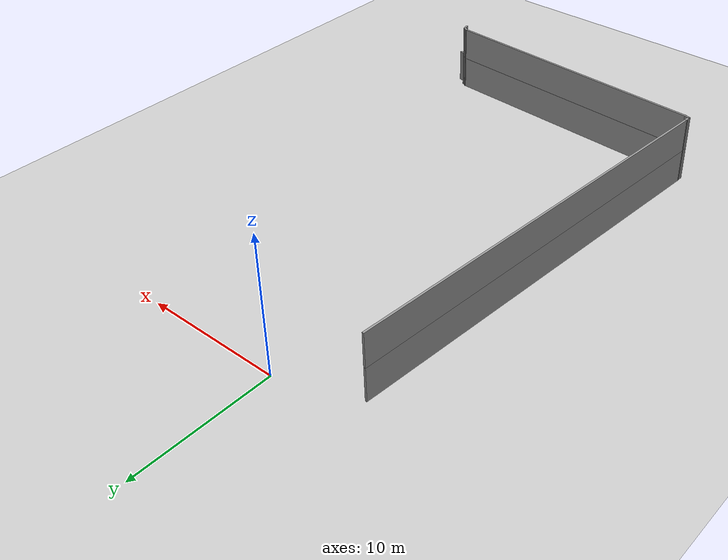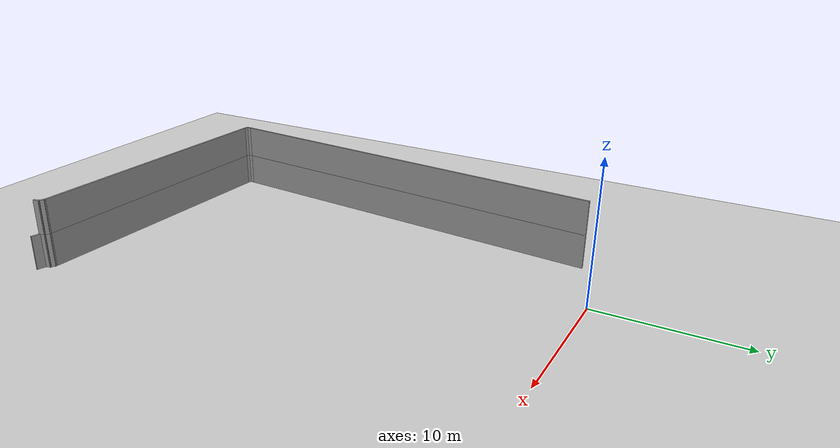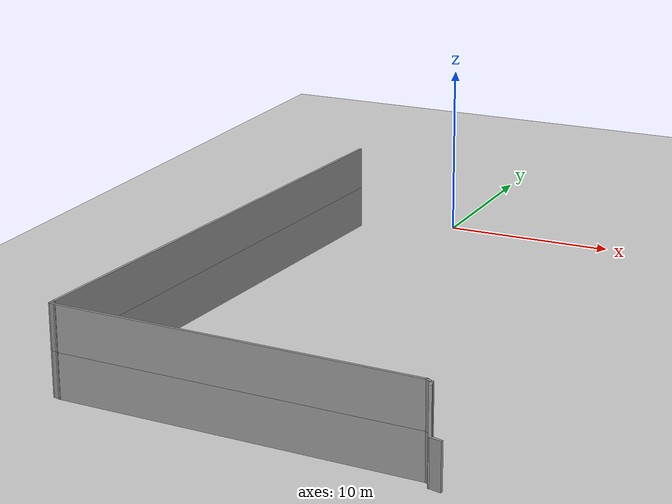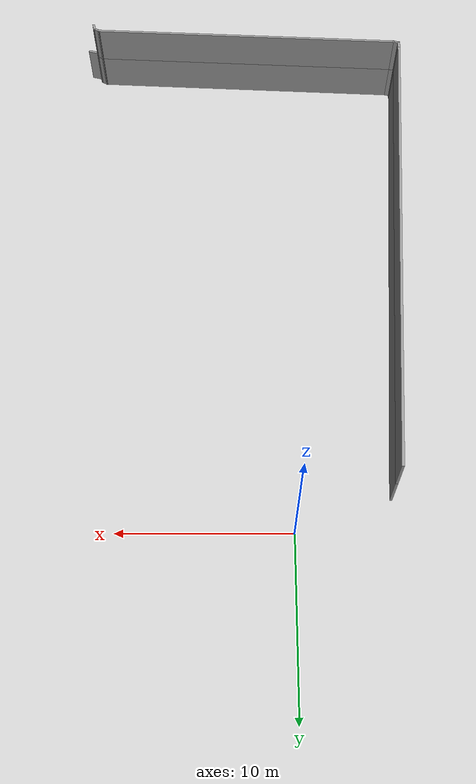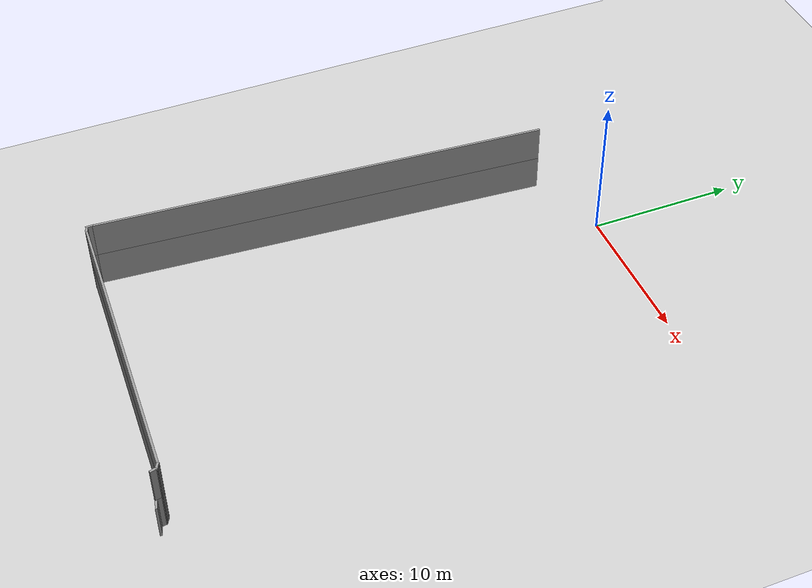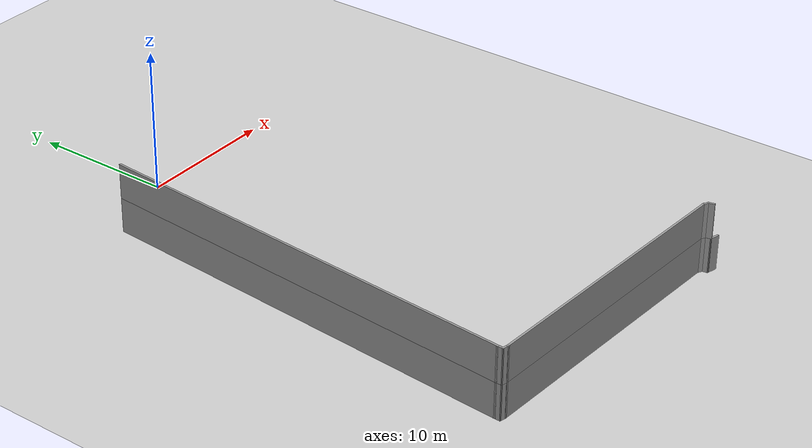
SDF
<sdf version="1.7">
 <world name="default">
  <model name="ground_plane">
   <static>1</static>
   <link name="link">
    <collision name="collision">
     <geometry><plane><normal>0 0 1</normal><size>100 100</size></plane></geometry>
     <surface>
      <contact><collide_bitmask>65535</collide_bitmask></contact>
      <friction><ode><mu>100</mu><mu2>50</mu2></ode></friction>
     </surface>
    </collision>
    <visual name="visual">
     <cast_shadows>0</cast_shadows>
     <geometry><plane><normal>0 0 1</normal><size>100 100</size></plane></geometry>
     <material>
      <script><uri>file://media/materials/scripts/gazebo.material</uri><name>Gazebo/Grey</name></script>
     </material>
    </visual>
   </link>
  </model>
  <model name="EnvDC01">
   <link name="Wall_189">
    <pose>-13.1058 -11.017 0 0 0 -1.64176</pose>
    <visual name="Wall_189_Visual">
     <pose>0 0 1.25 0 -0 0</pose>
     <geometry><box><size>30.6182 0.15 2.5</size></box></geometry>
     <material>
      <script><uri>file://media/materials/scripts/gazebo.material</uri><name>Gazebo/Grey</name></script>
      <ambient>1 1 1 1</ambient>
      <shader type="pixel"/>
     </material>
     <meta><layer>0</layer></meta>
    </visual>
    <collision name="Wall_189_Collision">
     <pose>0 0 1.25 0 -0 0</pose>
     <geometry><box><size>30.6182 0.15 2.5</size></box></geometry>
     <surface>
      <friction>
       <ode><mu>1</mu><mu2>1</mu2><fdir1>0 0 0</fdir1><slip1>0</slip1><slip2>0</slip2></ode>
       <torsional>
        <coefficient>1</coefficient>
        <patch_radius>0</patch_radius>
        <surface_radius>0</surface_radius>
        <use_patch_radius>1</use_patch_radius>
        <ode><slip>0</slip></ode>
       </torsional>
      </friction>
      <bounce><restitution_coefficient>0</restitution_coefficient><threshold>1e+06</threshold></bounce>
      <contact>
       <collide_without_contact>0</collide_without_contact>
       <collide_without_contact_bitmask>1</collide_without_contact_bitmask>
       <collide_bitmask>1</collide_bitmask>
       <ode>
        <soft_cfm>0</soft_cfm>
        <soft_erp>0.2</soft_erp>
        <kp>1e+13</kp>
        <kd>1</kd>
        <max_vel>0.01</max_vel>
        <min_depth>0</min_depth>
       </ode>
       <bullet>
        <split_impulse>1</split_impulse>
        <split_impulse_penetration_threshold>-0.01</split_impulse_penetration_threshold>
        <soft_cfm>0</soft_cfm>
        <soft_erp>0.2</soft_erp>
        <kp>1e+13</kp>
        <kd>1</kd>
       </bullet>
      </contact>
     </surface>
    </collision>
   </link>
   <link name="Wall_191">
    <pose>-14.1859 -26.3878 0 0 0 -1.5708</pose>
    <visual name="Wall_191_Visual">
     <pose>0 0 1.25 0 -0 0</pose>
     <geometry><box><size>0.5 0.15 2.5</size></box></geometry>
     <material>
      <script><uri>file://media/materials/scripts/gazebo.material</uri><name>Gazebo/Grey</name></script>
      <ambient>1 1 1 1</ambient>
      <shader type="pixel"/>
     </material>
     <meta><layer>0</layer></meta>
    </visual>
    <collision name="Wall_191_Collision">
     <pose>0 0 1.25 0 -0 0</pose>
     <geometry><box><size>0.5 0.15 2.5</size></box></geometry>
     <surface>
      <friction>
       <ode><mu>1</mu><mu2>1</mu2><fdir1>0 0 0</fdir1><slip1>0</slip1><slip2>0</slip2></ode>
       <torsional>
        <coefficient>1</coefficient>
        <patch_radius>0</patch_radius>
        <surface_radius>0</surface_radius>
        <use_patch_radius>1</use_patch_radius>
        <ode><slip>0</slip></ode>
       </torsional>
      </friction>
      <bounce><restitution_coefficient>0</restitution_coefficient><threshold>1e+06</threshold></bounce>
      <contact>
       <collide_without_contact>0</collide_without_contact>
       <collide_without_contact_bitmask>1</collide_without_contact_bitmask>
       <collide_bitmask>1</collide_bitmask>
       <ode>
        <soft_cfm>0</soft_cfm>
        <soft_erp>0.2</soft_erp>
        <kp>1e+13</kp>
        <kd>1</kd>
        <max_vel>0.01</max_vel>
        <min_depth>0</min_depth>
       </ode>
       <bullet>
        <split_impulse>1</split_impulse>
        <split_impulse_penetration_threshold>-0.01</split_impulse_penetration_threshold>
        <soft_cfm>0</soft_cfm>
        <soft_erp>0.2</soft_erp>
        <kp>1e+13</kp>
        <kd>1</kd>
       </bullet>
      </contact>
     </surface>
    </collision>
   </link>
   <link name="Wall_193">
    <pose>-14.0168 -26.6081 0 0 0 -0.261799</pose>
    <visual name="Wall_193_Visual">
     <pose>0 0 1.25 0 -0 0</pose>
     <geometry><box><size>0.5 0.15 2.5</size></box></geometry>
     <material>
      <script><uri>file://media/materials/scripts/gazebo.material</uri><name>Gazebo/Grey</name></script>
      <ambient>1 1 1 1</ambient>
      <shader type="pixel"/>
     </material>
     <meta><layer>0</layer></meta>
    </visual>
    <collision name="Wall_193_Collision">
     <pose>0 0 1.25 0 -0 0</pose>
     <geometry><box><size>0.5 0.15 2.5</size></box></geometry>
     <surface>
      <friction>
       <ode><mu>1</mu><mu2>1</mu2><fdir1>0 0 0</fdir1><slip1>0</slip1><slip2>0</slip2></ode>
       <torsional>
        <coefficient>1</coefficient>
        <patch_radius>0</patch_radius>
        <surface_radius>0</surface_radius>
        <use_patch_radius>1</use_patch_radius>
        <ode><slip>0</slip></ode>
       </torsional>
      </friction>
      <bounce><restitution_coefficient>0</restitution_coefficient><threshold>1e+06</threshold></bounce>
      <contact>
       <collide_without_contact>0</collide_without_contact>
       <collide_without_contact_bitmask>1</collide_without_contact_bitmask>
       <collide_bitmask>1</collide_bitmask>
       <ode>
        <soft_cfm>0</soft_cfm>
        <soft_erp>0.2</soft_erp>
        <kp>1e+13</kp>
        <kd>1</kd>
        <max_vel>0.01</max_vel>
        <min_depth>0</min_depth>
       </ode>
       <bullet>
        <split_impulse>1</split_impulse>
        <split_impulse_penetration_threshold>-0.01</split_impulse_penetration_threshold>
        <soft_cfm>0</soft_cfm>
        <soft_erp>0.2</soft_erp>
        <kp>1e+13</kp>
        <kd>1</kd>
       </bullet>
      </contact>
     </surface>
    </collision>
   </link>
   <link name="Wall_194">
    <pose>-3.82435 -27.1433 0 0 0 -0.048839</pose>
    <visual name="Wall_194_Visual">
     <pose>0 0 1.25 0 -0 0</pose>
     <geometry><box><size>20.2208 0.15 2.5</size></box></geometry>
     <material>
      <script><uri>file://media/materials/scripts/gazebo.material</uri><name>Gazebo/Grey</name></script>
      <ambient>1 1 1 1</ambient>
      <shader type="pixel"/>
     </material>
     <meta><layer>0</layer></meta>
    </visual>
    <collision name="Wall_194_Collision">
     <pose>0 0 1.25 0 -0 0</pose>
     <geometry><box><size>20.2208 0.15 2.5</size></box></geometry>
     <surface>
      <friction>
       <ode><mu>1</mu><mu2>1</mu2><fdir1>0 0 0</fdir1><slip1>0</slip1><slip2>0</slip2></ode>
       <torsional>
        <coefficient>1</coefficient>
        <patch_radius>0</patch_radius>
        <surface_radius>0</surface_radius>
        <use_patch_radius>1</use_patch_radius>
        <ode><slip>0</slip></ode>
       </torsional>
      </friction>
      <bounce><restitution_coefficient>0</restitution_coefficient><threshold>1e+06</threshold></bounce>
      <contact>
       <collide_without_contact>0</collide_without_contact>
       <collide_without_contact_bitmask>1</collide_without_contact_bitmask>
       <collide_bitmask>1</collide_bitmask>
       <ode>
        <soft_cfm>0</soft_cfm>
        <soft_erp>0.2</soft_erp>
        <kp>1e+13</kp>
        <kd>1</kd>
        <max_vel>0.01</max_vel>
        <min_depth>0</min_depth>
       </ode>
       <bullet>
        <split_impulse>1</split_impulse>
        <split_impulse_penetration_threshold>-0.01</split_impulse_penetration_threshold>
        <soft_cfm>0</soft_cfm>
        <soft_erp>0.2</soft_erp>
        <kp>1e+13</kp>
        <kd>1</kd>
       </bullet>
      </contact>
     </surface>
    </collision>
   </link>
   <link name="Wall_195">
    <pose>6.35065 -27.7207 0 0 0 -0.523599</pose>
    <visual name="Wall_195_Visual">
     <pose>0 0 1.25 0 -0 0</pose>
     <geometry><box><size>0.5 0.15 2.5</size></box></geometry>
     <material>
      <script><uri>file://media/materials/scripts/gazebo.material</uri><name>Gazebo/Grey</name></script>
      <ambient>1 1 1 1</ambient>
      <shader type="pixel"/>
     </material>
     <meta><layer>0</layer></meta>
    </visual>
    <collision name="Wall_195_Collision">
     <pose>0 0 1.25 0 -0 0</pose>
     <geometry><box><size>0.5 0.15 2.5</size></box></geometry>
     <surface>
      <friction>
       <ode><mu>1</mu><mu2>1</mu2><fdir1>0 0 0</fdir1><slip1>0</slip1><slip2>0</slip2></ode>
       <torsional>
        <coefficient>1</coefficient>
        <patch_radius>0</patch_radius>
        <surface_radius>0</surface_radius>
        <use_patch_radius>1</use_patch_radius>
        <ode><slip>0</slip></ode>
       </torsional>
      </friction>
      <bounce><restitution_coefficient>0</restitution_coefficient><threshold>1e+06</threshold></bounce>
      <contact>
       <collide_without_contact>0</collide_without_contact>
       <collide_without_contact_bitmask>1</collide_without_contact_bitmask>
       <collide_bitmask>1</collide_bitmask>
       <ode>
        <soft_cfm>0</soft_cfm>
        <soft_erp>0.2</soft_erp>
        <kp>1e+13</kp>
        <kd>1</kd>
        <max_vel>0.01</max_vel>
        <min_depth>0</min_depth>
       </ode>
       <bullet>
        <split_impulse>1</split_impulse>
        <split_impulse_penetration_threshold>-0.01</split_impulse_penetration_threshold>
        <soft_cfm>0</soft_cfm>
        <soft_erp>0.2</soft_erp>
        <kp>1e+13</kp>
        <kd>1</kd>
       </bullet>
      </contact>
     </surface>
    </collision>
   </link>
   <link name="Wall_197">
    <pose>6.54749 -27.9773 0 0 0 -1.309</pose>
    <visual name="Wall_197_Visual">
     <pose>0 0 1.25 0 -0 0</pose>
     <geometry><box><size>0.5 0.15 2.5</size></box></geometry>
     <material>
      <script><uri>file://media/materials/scripts/gazebo.material</uri><name>Gazebo/Grey</name></script>
      <ambient>1 1 1 1</ambient>
      <shader type="pixel"/>
     </material>
     <meta><layer>0</layer></meta>
    </visual>
    <collision name="Wall_197_Collision">
     <pose>0 0 1.25 0 -0 0</pose>
     <geometry><box><size>0.5 0.15 2.5</size></box></geometry>
     <surface>
      <friction>
       <ode><mu>1</mu><mu2>1</mu2><fdir1>0 0 0</fdir1><slip1>0</slip1><slip2>0</slip2></ode>
       <torsional>
        <coefficient>1</coefficient>
        <patch_radius>0</patch_radius>
        <surface_radius>0</surface_radius>
        <use_patch_radius>1</use_patch_radius>
        <ode><slip>0</slip></ode>
       </torsional>
      </friction>
      <bounce><restitution_coefficient>0</restitution_coefficient><threshold>1e+06</threshold></bounce>
      <contact>
       <collide_without_contact>0</collide_without_contact>
       <collide_without_contact_bitmask>1</collide_without_contact_bitmask>
       <collide_bitmask>1</collide_bitmask>
       <ode>
        <soft_cfm>0</soft_cfm>
        <soft_erp>0.2</soft_erp>
        <kp>1e+13</kp>
        <kd>1</kd>
        <max_vel>0.01</max_vel>
        <min_depth>0</min_depth>
       </ode>
       <bullet>
        <split_impulse>1</split_impulse>
        <split_impulse_penetration_threshold>-0.01</split_impulse_penetration_threshold>
        <soft_cfm>0</soft_cfm>
        <soft_erp>0.2</soft_erp>
        <kp>1e+13</kp>
        <kd>1</kd>
       </bullet>
      </contact>
     </surface>
    </collision>
   </link>
   <link name="Wall_198">
    <pose>6.88256 -28.224 0 0 0 -0.261799</pose>
    <visual name="Wall_198_Visual">
     <pose>0 0 1.25 0 -0 0</pose>
     <geometry><box><size>0.75 0.15 2.5</size></box></geometry>
     <material>
      <script><uri>file://media/materials/scripts/gazebo.material</uri><name>Gazebo/Grey</name></script>
      <ambient>1 1 1 1</ambient>
      <shader type="pixel"/>
     </material>
     <meta><layer>0</layer></meta>
    </visual>
    <collision name="Wall_198_Collision">
     <pose>0 0 1.25 0 -0 0</pose>
     <geometry><box><size>0.75 0.15 2.5</size></box></geometry>
     <surface>
      <friction>
       <ode><mu>1</mu><mu2>1</mu2><fdir1>0 0 0</fdir1><slip1>0</slip1><slip2>0</slip2></ode>
       <torsional>
        <coefficient>1</coefficient>
        <patch_radius>0</patch_radius>
        <surface_radius>0</surface_radius>
        <use_patch_radius>1</use_patch_radius>
        <ode><slip>0</slip></ode>
       </torsional>
      </friction>
      <bounce><restitution_coefficient>0</restitution_coefficient><threshold>1e+06</threshold></bounce>
      <contact>
       <collide_without_contact>0</collide_without_contact>
       <collide_without_contact_bitmask>1</collide_without_contact_bitmask>
       <collide_bitmask>1</collide_bitmask>
       <ode>
        <soft_cfm>0</soft_cfm>
        <soft_erp>0.2</soft_erp>
        <kp>1e+13</kp>
        <kd>1</kd>
        <max_vel>0.01</max_vel>
        <min_depth>0</min_depth>
       </ode>
       <bullet>
        <split_impulse>1</split_impulse>
        <split_impulse_penetration_threshold>-0.01</split_impulse_penetration_threshold>
        <soft_cfm>0</soft_cfm>
        <soft_erp>0.2</soft_erp>
        <kp>1e+13</kp>
        <kd>1</kd>
       </bullet>
      </contact>
     </surface>
    </collision>
   </link>
   <link name="Wall_366">
    <pose>-13.1058 -11.017 2.5 0 0 -1.64176</pose>
    <visual name="Wall_366_Visual">
     <pose>0 0 1.25 0 -0 0</pose>
     <geometry><box><size>30.6182 0.15 2.5</size></box></geometry>
     <material>
      <script><uri>file://media/materials/scripts/gazebo.material</uri><name>Gazebo/Grey</name></script>
      <ambient>1 1 1 1</ambient>
      <shader type="pixel"/>
     </material>
     <meta><layer>1</layer></meta>
    </visual>
    <collision name="Wall_366_Collision">
     <pose>0 0 1.25 0 -0 0</pose>
     <geometry><box><size>30.6182 0.15 2.5</size></box></geometry>
     <surface>
      <friction>
       <ode><mu>1</mu><mu2>1</mu2><fdir1>0 0 0</fdir1><slip1>0</slip1><slip2>0</slip2></ode>
       <torsional>
        <coefficient>1</coefficient>
        <patch_radius>0</patch_radius>
        <surface_radius>0</surface_radius>
        <use_patch_radius>1</use_patch_radius>
        <ode><slip>0</slip></ode>
       </torsional>
      </friction>
      <bounce><restitution_coefficient>0</restitution_coefficient><threshold>1e+06</threshold></bounce>
      <contact>
       <collide_without_contact>0</collide_without_contact>
       <collide_without_contact_bitmask>1</collide_without_contact_bitmask>
       <collide_bitmask>1</collide_bitmask>
       <ode>
        <soft_cfm>0</soft_cfm>
        <soft_erp>0.2</soft_erp>
        <kp>1e+13</kp>
        <kd>1</kd>
        <max_vel>0.01</max_vel>
        <min_depth>0</min_depth>
       </ode>
       <bullet>
        <split_impulse>1</split_impulse>
        <split_impulse_penetration_threshold>-0.01</split_impulse_penetration_threshold>
        <soft_cfm>0</soft_cfm>
        <soft_erp>0.2</soft_erp>
        <kp>1e+13</kp>
        <kd>1</kd>
       </bullet>
      </contact>
     </surface>
    </collision>
   </link>
   <link name="Wall_367">
    <pose>-14.1859 -26.3878 2.5 0 0 -1.5708</pose>
    <visual name="Wall_367_Visual">
     <pose>0 0 1.25 0 -0 0</pose>
     <geometry><box><size>0.5 0.15 2.5</size></box></geometry>
     <material>
      <script><uri>file://media/materials/scripts/gazebo.material</uri><name>Gazebo/Grey</name></script>
      <ambient>1 1 1 1</ambient>
      <shader type="pixel"/>
     </material>
     <meta><layer>1</layer></meta>
    </visual>
    <collision name="Wall_367_Collision">
     <pose>0 0 1.25 0 -0 0</pose>
     <geometry><box><size>0.5 0.15 2.5</size></box></geometry>
     <surface>
      <friction>
       <ode><mu>1</mu><mu2>1</mu2><fdir1>0 0 0</fdir1><slip1>0</slip1><slip2>0</slip2></ode>
       <torsional>
        <coefficient>1</coefficient>
        <patch_radius>0</patch_radius>
        <surface_radius>0</surface_radius>
        <use_patch_radius>1</use_patch_radius>
        <ode><slip>0</slip></ode>
       </torsional>
      </friction>
      <bounce><restitution_coefficient>0</restitution_coefficient><threshold>1e+06</threshold></bounce>
      <contact>
       <collide_without_contact>0</collide_without_contact>
       <collide_without_contact_bitmask>1</collide_without_contact_bitmask>
       <collide_bitmask>1</collide_bitmask>
       <ode>
        <soft_cfm>0</soft_cfm>
        <soft_erp>0.2</soft_erp>
        <kp>1e+13</kp>
        <kd>1</kd>
        <max_vel>0.01</max_vel>
        <min_depth>0</min_depth>
       </ode>
       <bullet>
        <split_impulse>1</split_impulse>
        <split_impulse_penetration_threshold>-0.01</split_impulse_penetration_threshold>
        <soft_cfm>0</soft_cfm>
        <soft_erp>0.2</soft_erp>
        <kp>1e+13</kp>
        <kd>1</kd>
       </bullet>
      </contact>
     </surface>
    </collision>
   </link>
   <link name="Wall_368">
    <pose>-14.0168 -26.6081 2.5 0 0 -0.261799</pose>
    <visual name="Wall_368_Visual">
     <pose>0 0 1.25 0 -0 0</pose>
     <geometry><box><size>0.5 0.15 2.5</size></box></geometry>
     <material>
      <script><uri>file://media/materials/scripts/gazebo.material</uri><name>Gazebo/Grey</name></script>
      <ambient>1 1 1 1</ambient>
      <shader type="pixel"/>
     </material>
     <meta><layer>1</layer></meta>
    </visual>
    <collision name="Wall_368_Collision">
     <pose>0 0 1.25 0 -0 0</pose>
     <geometry><box><size>0.5 0.15 2.5</size></box></geometry>
     <surface>
      <friction>
       <ode><mu>1</mu><mu2>1</mu2><fdir1>0 0 0</fdir1><slip1>0</slip1><slip2>0</slip2></ode>
       <torsional>
        <coefficient>1</coefficient>
        <patch_radius>0</patch_radius>
        <surface_radius>0</surface_radius>
        <use_patch_radius>1</use_patch_radius>
        <ode><slip>0</slip></ode>
       </torsional>
      </friction>
      <bounce><restitution_coefficient>0</restitution_coefficient><threshold>1e+06</threshold></bounce>
      <contact>
       <collide_without_contact>0</collide_without_contact>
       <collide_without_contact_bitmask>1</collide_without_contact_bitmask>
       <collide_bitmask>1</collide_bitmask>
       <ode>
        <soft_cfm>0</soft_cfm>
        <soft_erp>0.2</soft_erp>
        <kp>1e+13</kp>
        <kd>1</kd>
        <max_vel>0.01</max_vel>
        <min_depth>0</min_depth>
       </ode>
       <bullet>
        <split_impulse>1</split_impulse>
        <split_impulse_penetration_threshold>-0.01</split_impulse_penetration_threshold>
        <soft_cfm>0</soft_cfm>
        <soft_erp>0.2</soft_erp>
        <kp>1e+13</kp>
        <kd>1</kd>
       </bullet>
      </contact>
     </surface>
    </collision>
   </link>
   <link name="Wall_369">
    <pose>-3.82435 -27.1433 2.5 0 0 -0.048839</pose>
    <visual name="Wall_369_Visual">
     <pose>0 0 1.25 0 -0 0</pose>
     <geometry><box><size>20.2208 0.15 2.5</size></box></geometry>
     <material>
      <script><uri>file://media/materials/scripts/gazebo.material</uri><name>Gazebo/Grey</name></script>
      <ambient>1 1 1 1</ambient>
      <shader type="pixel"/>
     </material>
     <meta><layer>1</layer></meta>
    </visual>
    <collision name="Wall_369_Collision">
     <pose>0 0 1.25 0 -0 0</pose>
     <geometry><box><size>20.2208 0.15 2.5</size></box></geometry>
     <surface>
      <friction>
       <ode><mu>1</mu><mu2>1</mu2><fdir1>0 0 0</fdir1><slip1>0</slip1><slip2>0</slip2></ode>
       <torsional>
        <coefficient>1</coefficient>
        <patch_radius>0</patch_radius>
        <surface_radius>0</surface_radius>
        <use_patch_radius>1</use_patch_radius>
        <ode><slip>0</slip></ode>
       </torsional>
      </friction>
      <bounce><restitution_coefficient>0</restitution_coefficient><threshold>1e+06</threshold></bounce>
      <contact>
       <collide_without_contact>0</collide_without_contact>
       <collide_without_contact_bitmask>1</collide_without_contact_bitmask>
       <collide_bitmask>1</collide_bitmask>
       <ode>
        <soft_cfm>0</soft_cfm>
        <soft_erp>0.2</soft_erp>
        <kp>1e+13</kp>
        <kd>1</kd>
        <max_vel>0.01</max_vel>
        <min_depth>0</min_depth>
       </ode>
       <bullet>
        <split_impulse>1</split_impulse>
        <split_impulse_penetration_threshold>-0.01</split_impulse_penetration_threshold>
        <soft_cfm>0</soft_cfm>
        <soft_erp>0.2</soft_erp>
        <kp>1e+13</kp>
        <kd>1</kd>
       </bullet>
      </contact>
     </surface>
    </collision>
   </link>
   <link name="Wall_370">
    <pose>6.35065 -27.7207 2.5 0 0 -0.523599</pose>
    <visual name="Wall_370_Visual">
     <pose>0 0 1.25 0 -0 0</pose>
     <geometry><box><size>0.5 0.15 2.5</size></box></geometry>
     <material>
      <script><uri>file://media/materials/scripts/gazebo.material</uri><name>Gazebo/Grey</name></script>
      <ambient>1 1 1 1</ambient>
      <shader type="pixel"/>
     </material>
     <meta><layer>1</layer></meta>
    </visual>
    <collision name="Wall_370_Collision">
     <pose>0 0 1.25 0 -0 0</pose>
     <geometry><box><size>0.5 0.15 2.5</size></box></geometry>
     <surface>
      <friction>
       <ode><mu>1</mu><mu2>1</mu2><fdir1>0 0 0</fdir1><slip1>0</slip1><slip2>0</slip2></ode>
       <torsional>
        <coefficient>1</coefficient>
        <patch_radius>0</patch_radius>
        <surface_radius>0</surface_radius>
        <use_patch_radius>1</use_patch_radius>
        <ode><slip>0</slip></ode>
       </torsional>
      </friction>
      <bounce><restitution_coefficient>0</restitution_coefficient><threshold>1e+06</threshold></bounce>
      <contact>
       <collide_without_contact>0</collide_without_contact>
       <collide_without_contact_bitmask>1</collide_without_contact_bitmask>
       <collide_bitmask>1</collide_bitmask>
       <ode>
        <soft_cfm>0</soft_cfm>
        <soft_erp>0.2</soft_erp>
        <kp>1e+13</kp>
        <kd>1</kd>
        <max_vel>0.01</max_vel>
        <min_depth>0</min_depth>
       </ode>
       <bullet>
        <split_impulse>1</split_impulse>
        <split_impulse_penetration_threshold>-0.01</split_impulse_penetration_threshold>
        <soft_cfm>0</soft_cfm>
        <soft_erp>0.2</soft_erp>
        <kp>1e+13</kp>
        <kd>1</kd>
       </bullet>
      </contact>
     </surface>
    </collision>
   </link>
   <link name="Wall_371">
    <pose>6.54749 -27.9773 2.5 0 0 -1.309</pose>
    <visual name="Wall_371_Visual">
     <pose>0 0 1.25 0 -0 0</pose>
     <geometry><box><size>0.5 0.15 2.5</size></box></geometry>
     <material>
      <script><uri>file://media/materials/scripts/gazebo.material</uri><name>Gazebo/Grey</name></script>
      <ambient>1 1 1 1</ambient>
      <shader type="pixel"/>
     </material>
     <meta><layer>1</layer></meta>
    </visual>
    <collision name="Wall_371_Collision">
     <pose>0 0 1.25 0 -0 0</pose>
     <geometry><box><size>0.5 0.15 2.5</size></box></geometry>
     <surface>
      <friction>
       <ode><mu>1</mu><mu2>1</mu2><fdir1>0 0 0</fdir1><slip1>0</slip1><slip2>0</slip2></ode>
       <torsional>
        <coefficient>1</coefficient>
        <patch_radius>0</patch_radius>
        <surface_radius>0</surface_radius>
        <use_patch_radius>1</use_patch_radius>
        <ode><slip>0</slip></ode>
       </torsional>
      </friction>
      <bounce><restitution_coefficient>0</restitution_coefficient><threshold>1e+06</threshold></bounce>
      <contact>
       <collide_without_contact>0</collide_without_contact>
       <collide_without_contact_bitmask>1</collide_without_contact_bitmask>
       <collide_bitmask>1</collide_bitmask>
       <ode>
        <soft_cfm>0</soft_cfm>
        <soft_erp>0.2</soft_erp>
        <kp>1e+13</kp>
        <kd>1</kd>
        <max_vel>0.01</max_vel>
        <min_depth>0</min_depth>
       </ode>
       <bullet>
        <split_impulse>1</split_impulse>
        <split_impulse_penetration_threshold>-0.01</split_impulse_penetration_threshold>
        <soft_cfm>0</soft_cfm>
        <soft_erp>0.2</soft_erp>
        <kp>1e+13</kp>
        <kd>1</kd>
       </bullet>
      </contact>
     </surface>
    </collision>
   </link>
   <static>1</static>
   <pose>6.55365 -6.2466 0 0 -0 0</pose>
  </model>
 </world>
</sdf>
